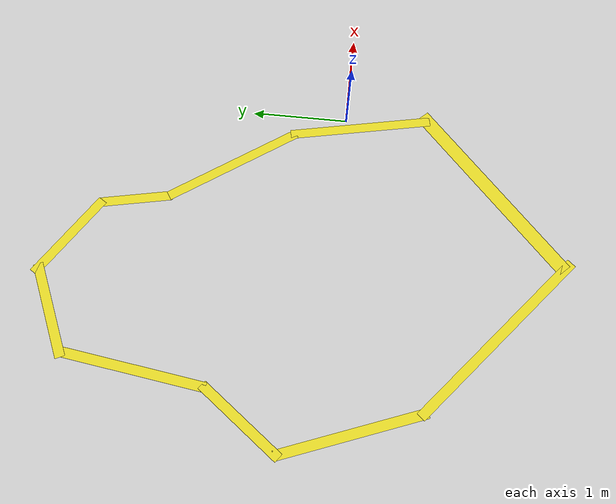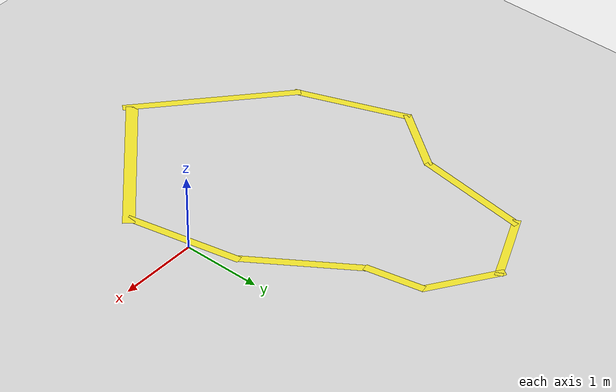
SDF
<sdf version="1.7">
 <world name="default">
  <light name="sun" type="directional">
   <pose>0 0 10 0 -0 0</pose>
   <diffuse>0.8 0.8 0.8 1</diffuse>
   <specular>0.2 0.2 0.2 1</specular>
   <attenuation>
    <range>1000</range>
    <constant>0.9</constant>
    <linear>0.01</linear>
    <quadratic>0.001</quadratic>
   </attenuation>
   <direction>-0.5 0.1 -0.9</direction>
   <spot><inner_angle>0</inner_angle><outer_angle>0</outer_angle><falloff>0</falloff></spot>
  </light>
  <model name="ground_plane">
   <static>1</static>
   <link name="link">
    <collision name="collision">
     <geometry><plane><normal>0 0 1</normal><size>100 100</size></plane></geometry>
     <surface>
      <contact><collide_bitmask>65535</collide_bitmask></contact>
      <friction><ode><mu>100</mu><mu2>50</mu2></ode></friction>
     </surface>
    </collision>
    <visual name="visual">
     <cast_shadows>0</cast_shadows>
     <geometry><plane><normal>0 0 1</normal><size>100 100</size></plane></geometry>
     <material>
      <script><uri>file://media/materials/scripts/gazebo.material</uri><name>Gazebo/Grey</name></script>
     </material>
    </visual>
   </link>
  </model>
  <gravity>0 0 -9.8</gravity>
  <magnetic_field>6e-06 2.3e-05 -4.2e-05</magnetic_field>
  <atmosphere type="adiabatic"/>
  <physics type="ode">
   <max_step_size>0.001</max_step_size>
   <real_time_factor>1</real_time_factor>
   <real_time_update_rate>1000</real_time_update_rate>
  </physics>
  <scene><ambient>0.4 0.4 0.4 1</ambient><background>0.7 0.7 0.7 1</background><shadows>1</shadows></scene>
  <spherical_coordinates>
   <surface_model>EARTH_WGS84</surface_model>
   <latitude_deg>0</latitude_deg>
   <longitude_deg>0</longitude_deg>
   <elevation>0</elevation>
   <heading_deg>0</heading_deg>
  </spherical_coordinates>
  <model name="line">
   <static>1</static>
   <link name="first">
    <collision name="collision_first">
     <pose>0 0 0 0 -0 0.2</pose>
     <geometry><box><size>0.1 1.5 0</size></box></geometry>
    </collision>
    <collision name="collision_second">
     <pose>-0.56 1.3 0 0 -0 0.6</pose>
     <geometry><box><size>0.1 1.5 0</size></box></geometry>
    </collision>
    <collision name="collision_third">
     <pose>-1.05 2.25 0 0 -0 0.2</pose>
     <geometry><box><size>0.1 0.75 0</size></box></geometry>
    </collision>
    <collision name="collision_forth">
     <pose>-1.52 2.86 0 0 -0 1</pose>
     <geometry><box><size>0.1 1 0</size></box></geometry>
    </collision>
    <collision name="collision_fivth">
     <pose>-2.3 2.9 0 0 -0 2</pose>
     <geometry><box><size>0.1 1 0</size></box></geometry>
    </collision>
    <collision name="collision_sixth">
     <pose>-2.8 2 0 0 -0 3</pose>
     <geometry><box><size>0.1 1.5 0</size></box></geometry>
    </collision>
    <collision name="collision_seventh">
     <pose>-3.18 0.9 0 0 -0 2.5</pose>
     <geometry><box><size>0.1 1 0</size></box></geometry>
    </collision>
    <collision name="collision_eigth">
     <pose>-3.2 -0.15 0 0 -0 -2.78319</pose>
     <geometry><box><size>0.1 1.5 0</size></box></geometry>
    </collision>
    <collision name="collision_nine">
     <pose>-2.15 -1.5 0 0 -0 -2.28319</pose>
     <geometry><box><size>0.1 2.2 0</size></box></geometry>
    </collision>
    <collision name="collision_ten">
     <pose>-0.6 -1.4 0 0 -0 2.31682</pose>
     <geometry><box><size>0.15 2.2 0</size></box></geometry>
    </collision>
    <visual name="visual_first">
     <pose>0 0 0 0 -0 0.2</pose>
     <geometry><box><size>0.1 1.5 0</size></box></geometry>
     <material><script><name>Gazebo/YellowGlow</name><uri>__default__</uri></script></material>
    </visual>
    <visual name="visual_second">
     <pose>-0.56 1.3 0 0 -0 0.6</pose>
     <geometry><box><size>0.1 1.5 0</size></box></geometry>
     <material><script><name>Gazebo/YellowGlow</name><uri>__default__</uri></script></material>
    </visual>
    <visual name="visual_third">
     <pose>-1.05 2.25 0 0 -0 0.2</pose>
     <geometry><box><size>0.1 0.75 0</size></box></geometry>
     <material><script><name>Gazebo/YellowGlow</name><uri>__default__</uri></script></material>
    </visual>
    <visual name="visual_forth">
     <pose>-1.52 2.86 0 0 -0 1</pose>
     <geometry><box><size>0.1 1 0</size></box></geometry>
     <material><script><name>Gazebo/YellowGlow</name><uri>__default__</uri></script></material>
    </visual>
    <visual name="visual_fivth">
     <pose>-2.3 2.9 0 0 -0 2</pose>
     <geometry><box><size>0.1 1 0</size></box></geometry>
     <material><script><name>Gazebo/YellowGlow</name><uri>__default__</uri></script></material>
    </visual>
    <visual name="visual_sixth">
     <pose>-2.8 2 0 0 -0 3</pose>
     <geometry><box><size>0.1 1.5 0</size></box></geometry>
     <material><script><name>Gazebo/YellowGlow</name><uri>__default__</uri></script></material>
    </visual>
    <visual name="visual_seventh">
     <pose>-3.18 0.9 0 0 -0 2.5</pose>
     <geometry><box><size>0.1 1 0</size></box></geometry>
     <material><script><name>Gazebo/YellowGlow</name><uri>__default__</uri></script></material>
    </visual>
    <visual name="visual_eigth">
     <pose>-3.2 -0.15 0 0 -0 -2.78319</pose>
     <geometry><box><size>0.1 1.5 0</size></box></geometry>
     <material><script><name>Gazebo/YellowGlow</name><uri>__default__</uri></script></material>
    </visual>
    <visual name="visual_nine">
     <pose>-2.15 -1.5 0 0 -0 -2.28319</pose>
     <geometry><box><size>0.1 2.2 0</size></box></geometry>
     <material><script><name>Gazebo/YellowGlow</name><uri>__default__</uri></script></material>
    </visual>
    <visual name="visual_ten">
     <pose>-0.6 -1.4 0 0 -0 2.31682</pose>
     <geometry><box><size>0.15 2.2 0</size></box></geometry>
     <material><script><name>Gazebo/YellowGlow</name><uri>__default__</uri></script></material>
    </visual>
   </link>
   <pose>-0.063597 -0.154466 0 0 -0 0</pose>
  </model>
 </world>
</sdf>
